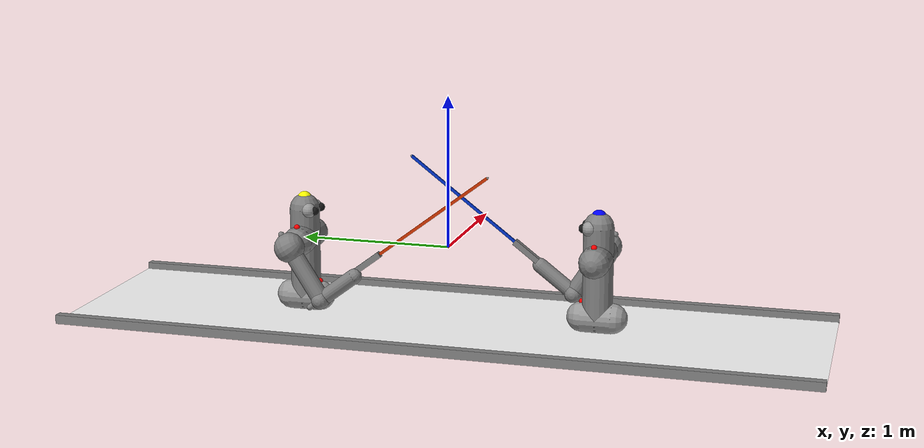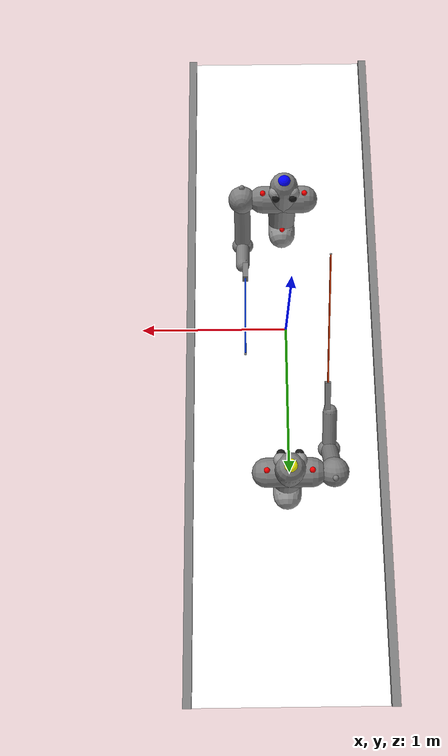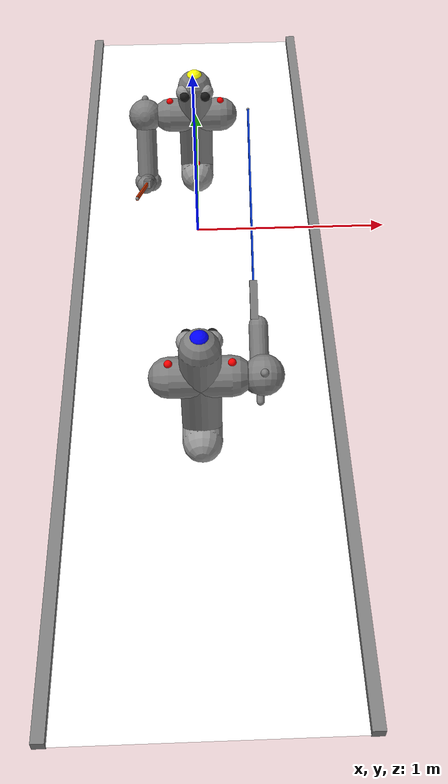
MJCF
<mujoco model="arm3d">
	<compiler angle="radian" coordinate="local" inertiafromgeom="true" />
	<option gravity="0 0 0" integrator="Euler" iterations="20" timestep="0.01" />
	<default>
		<joint armature="0.04" damping="1" limited="true" />
		<geom conaffinity="0" condim="1" contype="0" density="300" friction=".8 .1 .1" margin="0.002" />
	</default>
	<asset>
		<texture type="skybox" builtin="gradient" rgb1="0.059 0.620 0.961" rgb2="0.212 0.251 0.643" width="32" height="512" random="0.001" />
		<material name="glass" reflectance="1" rgba="1 1 1 0.3" shininess="0.7" />
		<material name="light-sword-yellow" rgba=".8 .2 0 1" emission="2" />
		<material name="light-sword-blue" rgba="0 .2 0.8 1" emission="2" />
	</asset>
	<worldbody>
		<light diffuse=".5 .5 .5" dir="0 0 -1" pos="0 0 3" castshadow="false" />
		<geom conaffinity="1" contype="1" name="table" pos="0 0 -0.5" size="0.7 2.5 0.1" type="plane" material="glass" />
		<geom conaffinity="1" contype="1" name="0_indicator" pos="-0.7 0 -0.49" size="0.03 2.5 0.03" type="box" />
		<geom conaffinity="1" contype="1" name="1_indicator" pos="0.7 0 -0.49" size="0.03 2.5 0.03" type="box" />
		<body name="0_x_slide_link" pos="0 -1 0">
			<geom fromto="-0.1 0 -0.4 0.1 0 -0.4" name="0_x_slide" rgba="0.6 0.6 0.6 0" size="0.1" type="capsule">
			</geom>
			<joint axis="1 0 0" name="0_x_slide_joint" pos="0 0 -0.4" range="-0.6 0.6" type="slide">
			</joint>
			<body name="0_y_slide_link" pos="0 0 0">
				<geom fromto="0 -0.1 -0.4 0 0.1 -0.4" name="0_y_slide" rgba="0.6 0.6 0.6 1" size="0.1" type="capsule" />
				<joint axis="0 1 0" name="0_y_slide_joint" pos="0 0 -0.4" range="-1.0 1.0" type="slide" />
				<body name="0_r_shoulder_pan_link" pos="0 0 0">
					<geom name="0_l_eye" pos="-0.06 0.05 0.2" rgba="0.6 0.6 0.6 1" size="0.05" type="sphere" />
					<geom name="0_r_eye" pos=" 0.06 0.05 0.2" rgba="0.6 0.6 0.6 1" size="0.05" type="sphere" />
					<geom name="0_l_eye_pin" pos="-0.06 0.09 0.2" rgba="0.1 0.1 0.1 1" size="0.03" type="sphere" />
					<geom name="0_r_eye_pin" pos=" 0.06 0.09 0.2" rgba="0.1 0.1 0.1 1" size="0.03" type="sphere" />
					<geom name="0_target0" pos="0 0.1 -0.3" rgba="1 0 0 1" size="0.02" type="sphere" />
					<geom name="0_target1" pos="0.15 0 0.1" rgba="1 0 0 1" size="0.02" type="sphere" />
					<geom name="0_target2" pos="-0.15 0 0.1" rgba="1 0 0 1" size="0.02" type="sphere" />
					<geom name="0_hat" pos="0 0 0.265" rgba="0 0 1 1" size="0.05" type="sphere" />
					<geom fromto="0 0 -0.4 0 0 0.2" name="0_shoulder_pan" size="0.1" type="capsule" />
					<joint axis="0 0 1" damping="1.0" name="0_r_shoulder_pan_joint" pos="0 0 0" range="-2.2854 1.714602" type="hinge" />
					<body axisangle="1 0 0 -1.0" name="0_r_shoulder_lift_link" pos="0 0 0">
						<geom fromto="-0.15 0 0 0.15 0 0" name="0_shoulder_lift" size="0.1" type="capsule" />
						<joint axis="1 0 0" damping="1.0" name="0_r_shoulder_lift_joint" pos="0.3 0 0" range="-0.2 2.2" type="hinge" />
						<body axisangle="0 0 1 1.57079" name="0_r_shoulder_turn_link" pos="0.3 0 0">
							<geom name="0_shoulder_turn" pos="0 0 0" size="0.1" type="sphere" />
							<joint axis="0 0 1" damping="1.0" name="0_r_shoulder_turn_joint" pos="0 0 0" range="-1.57079 0.4" type="hinge" />
							<body name="0_r_upper_arm_roll_link" pos="0 0 0">
								<geom fromto="-0.1 0 0 0.1 0 0" name="0_upper_arm_roll" size="0.02" type="capsule" />
								<joint axis="1 0 0" damping="0.1" name="0_r_upper_arm_roll_joint" pos="0 0 0" range="-1.5 1.7" type="hinge" />
								<body name="0_r_upper_arm_link" pos="0 0 0">
									<geom fromto="0 0 0 0.4 0 0" name="0_upper_arm" size="0.06" type="capsule" />
									<body axisangle="0 1 0 -1.65" name="0_r_elbow_flex_link" pos="0.4 0 0">
										<geom fromto="0 -0.02 0 0.0 0.02 0" name="0_elbow_flex" size="0.06" type="capsule" />
										<joint axis="0 1 0" damping="0.1" name="0_r_elbow_flex_joint" pos="0 0 0" range="-0.6713 1.65" type="hinge" />
										<body name="0_r_forearm_roll_link" pos="0 0 0">
											<geom fromto="-0.1 0 0 0.1 0 0" name="0_forearm_roll" size="0.02" type="capsule" />
											<joint axis="1 0 0" damping=".1" limited="true" name="0_r_forearm_roll_joint" pos="0 0 0" range="-1.5 1.5" type="hinge" />
											<body name="0_r_forearm_link" pos="0 0 0">
												<geom fromto="0 0 0 0.291 0 0" name="0_forearm" size="0.05" type="capsule" />
												<body name="0_r_wrist_flex_link" pos="0.321 0 0">
													<geom fromto="0 -0.02 0 0 0.02 0" name="0_wrist_flex" size="0.01" type="capsule" />
													<joint axis="0 1 0" damping=".1" name="0_r_wrist_flex_joint" pos="0 0 0" range="-1.094 0" type="hinge" />
													<body name="0_r_wrist_roll_link" pos="0 0 0">
														<joint axis="1 0 0" damping="0.1" limited="true" name="0_r_wrist_roll_joint" pos="0 0 0" range="-1.5 1.5" type="hinge" />
														<geom conaffinity="1" name="0_sword_blade" pos="0.6 0.02 0.02" size="0.5 0.005 0.01" type="box" material="light-sword-blue" />
														<geom name="0_sword_tip" type="sphere" rgba="0.6 0.6 0.6 1" pos=" 1.1 0.02 0.02" size="0.008" conaffinity="1" />
														<geom conaffinity="1" name="0_sword_handle" pos="0.1 0.02 0.02" size="0.1 0.02 0.02" type="box" />
													</body>
												</body>
											</body>
										</body>
									</body>
								</body>
							</body>
						</body>
					</body>
				</body>
			</body>
		</body>
		<body name="1_x_slide_link" pos="0 1 0" axisangle="0 0 1 -3.1415926">
			<geom fromto="-0.1 0 -0.4 0.1 0 -0.4" name="1_x_slide" rgba="0.6 0.6 0.6 0" size="0.1" type="capsule">
			</geom>
			<joint axis="1 0 0" name="1_x_slide_joint" pos="0 0 -0.4" range="-0.6 0.6" type="slide">
			</joint>
			<body name="1_y_slide_link" pos="0 0 0">
				<geom fromto="0 -0.1 -0.4 0 0.1 -0.4" name="1_y_slide" rgba="0.6 0.6 0.6 1" size="0.1" type="capsule" />
				<joint axis="0 1 0" name="1_y_slide_joint" pos="0 0 -0.4" range="-1.0 1.0" type="slide" />
				<body name="1_r_shoulder_pan_link" pos="0 0 0">
					<geom name="1_l_eye" pos="-0.06 0.05 0.2" rgba="0.6 0.6 0.6 1" size="0.05" type="sphere" />
					<geom name="1_r_eye" pos=" 0.06 0.05 0.2" rgba="0.6 0.6 0.6 1" size="0.05" type="sphere" />
					<geom name="1_l_eye_pin" pos="-0.06 0.09 0.2" rgba="0.1 0.1 0.1 1" size="0.03" type="sphere" />
					<geom name="1_r_eye_pin" pos=" 0.06 0.09 0.2" rgba="0.1 0.1 0.1 1" size="0.03" type="sphere" />
					<geom name="1_target0" pos="0 0.1 -0.3" rgba="1 0 0 1" size="0.02" type="sphere" />
					<geom name="1_target1" pos="0.15 0 0.1" rgba="1 0 0 1" size="0.02" type="sphere" />
					<geom name="1_target2" pos="-0.15 0 0.1" rgba="1 0 0 1" size="0.02" type="sphere" />
					<geom name="1_hat" pos="0 0 0.265" rgba="1 1 0 1" size="0.05" type="sphere" />
					<geom fromto="0 0 -0.4 0 0 0.2" name="1_shoulder_pan" size="0.1" type="capsule" />
					<joint axis="0 0 1" damping="1.0" name="1_r_shoulder_pan_joint" pos="0 0 0" range="-2.2854 1.714602" type="hinge" />
					<body axisangle="1 0 0 -1.0" name="1_r_shoulder_lift_link" pos="0 0 0">
						<geom fromto="-0.15 0 0 0.15 0 0" name="1_shoulder_lift" size="0.1" type="capsule" />
						<joint axis="1 0 0" damping="1.0" name="1_r_shoulder_lift_joint" pos="0.3 0 0" range="-0.2 2.2" type="hinge" />
						<body axisangle="0 0 1 1.57079" name="1_r_shoulder_turn_link" pos="0.3 0 0">
							<geom name="1_shoulder_turn" pos="0 0 0" size="0.1" type="sphere" />
							<joint axis="0 0 1" damping="1.0" name="1_r_shoulder_turn_joint" pos="0 0 0" range="-1.57079 0.4" type="hinge" />
							<body name="1_r_upper_arm_roll_link" pos="0 0 0">
								<geom fromto="-0.1 0 0 0.1 0 0" name="1_upper_arm_roll" size="0.02" type="capsule" />
								<joint axis="1 0 0" damping="0.1" name="1_r_upper_arm_roll_joint" pos="0 0 0" range="-1.5 1.7" type="hinge" />
								<body name="1_r_upper_arm_link" pos="0 0 0">
									<geom fromto="0 0 0 0.4 0 0" name="1_upper_arm" size="0.06" type="capsule" />
									<body axisangle="0 1 0 -1.65" name="1_r_elbow_flex_link" pos="0.4 0 0">
										<geom fromto="0 -0.02 0 0.0 0.02 0" name="1_elbow_flex" size="0.06" type="capsule" />
										<joint axis="0 1 0" damping="0.1" name="1_r_elbow_flex_joint" pos="0 0 0" range="-0.6713 1.65" type="hinge" />
										<body name="1_r_forearm_roll_link" pos="0 0 0">
											<geom fromto="-0.1 0 0 0.1 0 0" name="1_forearm_roll" size="0.02" type="capsule" />
											<joint axis="1 0 0" damping=".1" limited="true" name="1_r_forearm_roll_joint" pos="0 0 0" range="-1.5 1.5" type="hinge" />
											<body name="1_r_forearm_link" pos="0 0 0">
												<geom fromto="0 0 0 0.291 0 0" name="1_forearm" size="0.05" type="capsule" />
												<body name="1_r_wrist_flex_link" pos="0.321 0 0">
													<geom fromto="0 -0.02 0 0 0.02 0" name="1_wrist_flex" size="0.01" type="capsule" />
													<joint axis="0 1 0" damping=".1" name="1_r_wrist_flex_joint" pos="0 0 0" range="-1.094 0" type="hinge" />
													<body name="1_r_wrist_roll_link" pos="0 0 0">
														<joint axis="1 0 0" damping="0.1" limited="true" name="1_r_wrist_roll_joint" pos="0 0 0" range="-1.5 1.5" type="hinge" />
														<geom conaffinity="1" name="1_sword_blade" pos="0.6 0.02 0.02" size="0.5 0.005 0.01" type="box" material="light-sword-yellow" />
														<geom name="1_sword_tip" type="sphere" rgba="0.6 0.6 0.6 1" pos=" 1.1 0.02 0.02" size="0.008" conaffinity="1" />
														<geom conaffinity="1" name="1_sword_handle" pos="0.1 0.02 0.02" size="0.1 0.02 0.02" type="box" />
													</body>
												</body>
											</body>
										</body>
									</body>
								</body>
							</body>
						</body>
					</body>
				</body>
			</body>
		</body>
	</worldbody>
	<actuator>
		<motor ctrllimited="true" ctrlrange="-2.0 2.0" joint="0_x_slide_joint">
		</motor>
		<motor ctrllimited="true" ctrlrange="-2.0 2.0" joint="0_y_slide_joint" />
		<motor ctrllimited="true" ctrlrange="-2.0 2.0" joint="0_r_shoulder_pan_joint" />
		<motor ctrllimited="true" ctrlrange="-2.0 2.0" joint="0_r_shoulder_lift_joint" />
		<motor ctrllimited="true" ctrlrange="-2.0 2.0" joint="0_r_shoulder_turn_joint" />
		<motor ctrllimited="true" ctrlrange="-2.0 2.0" joint="0_r_upper_arm_roll_joint" />
		<motor ctrllimited="true" ctrlrange="-2.0 2.0" joint="0_r_elbow_flex_joint" />
		<motor ctrllimited="true" ctrlrange="-2.0 2.0" joint="0_r_forearm_roll_joint" />
		<motor ctrllimited="true" ctrlrange="-2.0 2.0" joint="0_r_wrist_flex_joint" />
		<motor ctrllimited="true" ctrlrange="-2.0 2.0" joint="0_r_wrist_roll_joint" />
		<motor ctrllimited="true" ctrlrange="-2.0 2.0" joint="1_x_slide_joint">
		</motor>
		<motor ctrllimited="true" ctrlrange="-2.0 2.0" joint="1_y_slide_joint" />
		<motor ctrllimited="true" ctrlrange="-2.0 2.0" joint="1_r_shoulder_pan_joint" />
		<motor ctrllimited="true" ctrlrange="-2.0 2.0" joint="1_r_shoulder_lift_joint" />
		<motor ctrllimited="true" ctrlrange="-2.0 2.0" joint="1_r_shoulder_turn_joint" />
		<motor ctrllimited="true" ctrlrange="-2.0 2.0" joint="1_r_upper_arm_roll_joint" />
		<motor ctrllimited="true" ctrlrange="-2.0 2.0" joint="1_r_elbow_flex_joint" />
		<motor ctrllimited="true" ctrlrange="-2.0 2.0" joint="1_r_forearm_roll_joint" />
		<motor ctrllimited="true" ctrlrange="-2.0 2.0" joint="1_r_wrist_flex_joint" />
		<motor ctrllimited="true" ctrlrange="-2.0 2.0" joint="1_r_wrist_roll_joint" />
	</actuator>
	<contact>
		<pair geom1="0_sword_tip" geom2="1_shoulder_pan" name="tip0_sp_attact" />
		<pair geom1="0_sword_tip" geom2="1_shoulder_lift" name="tip0_sl_attact" />
		<pair geom1="1_sword_tip" geom2="0_shoulder_pan" name="tip1_sp_attact" />
		<pair geom1="1_sword_tip" geom2="0_shoulder_lift" name="tip1_sl_attact" />
		<pair geom1="0_sword_blade" geom2="1_sword_blade" name="blade0_contact" />
		<pair geom1="0_sword_blade" geom2="1_y_slide" name="blade0_slide_contact" />
		<pair geom1="0_sword_blade" geom2="1_shoulder_pan" name="blade0_sp_contact" />
		<pair geom1="0_sword_blade" geom2="1_shoulder_lift" name="blade0_sl_contact" />
		<pair geom1="0_sword_blade" geom2="1_upper_arm_roll" name="blade0_uar_contact" />
		<pair geom1="0_sword_blade" geom2="1_upper_arm" name="blade0_ua_contact" />
		<pair geom1="0_sword_blade" geom2="1_elbow_flex" name="blade0_ef_contact" />
		<pair geom1="0_sword_blade" geom2="1_forearm_roll" name="blade0_fr_contact" />
		<pair geom1="0_sword_blade" geom2="1_forearm" name="blade0_forearm_contact" />
		<pair geom1="0_sword_blade" geom2="1_wrist_flex" name="blade0_wf_contact" />
		<pair geom1="0_sword_blade" geom2="1_sword_handle" name="blade0_handle_contact" />
		<pair geom1="1_sword_blade" geom2="0_sword_blade" name="blade1_contact" />
		<pair geom1="1_sword_blade" geom2="0_y_slide" name="blade1_slide_contact" />
		<pair geom1="1_sword_blade" geom2="0_shoulder_pan" name="blade1_sp_contact" />
		<pair geom1="1_sword_blade" geom2="0_shoulder_lift" name="blade1_sl_contact" />
		<pair geom1="1_sword_blade" geom2="0_upper_arm_roll" name="blade1_uar_contact" />
		<pair geom1="1_sword_blade" geom2="0_upper_arm" name="blade1_ua_contact" />
		<pair geom1="1_sword_blade" geom2="0_elbow_flex" name="blade1_ef_contact" />
		<pair geom1="1_sword_blade" geom2="0_forearm_roll" name="blade1_fr_contact" />
		<pair geom1="1_sword_blade" geom2="0_forearm" name="blade1_forearm_contact" />
		<pair geom1="1_sword_blade" geom2="0_wrist_flex" name="blade1_wf_contact" />
		<pair geom1="1_sword_blade" geom2="0_sword_handle" name="blade1_handle_contact" />
		<pair geom1="0_forearm" geom2="1_y_slide" name="arm0_slide_contact" />
		<pair geom1="0_forearm" geom2="1_shoulder_pan" name="arm0_sp_contact" />
		<pair geom1="0_forearm" geom2="1_shoulder_lift" name="arm0_sl_contact" />
		<pair geom1="0_forearm" geom2="1_upper_arm_roll" name="arm0_uar_contact" />
		<pair geom1="0_forearm" geom2="1_upper_arm" name="arm0_ua_contact" />
		<pair geom1="0_forearm" geom2="1_elbow_flex" name="arm0_ef_contact" />
		<pair geom1="0_forearm" geom2="1_forearm_roll" name="arm0_fr_contact" />
		<pair geom1="0_forearm" geom2="1_forearm" name="arm0_forearm_contact" />
		<pair geom1="0_forearm" geom2="1_wrist_flex" name="arm0_wf_contact" />
		<pair geom1="0_forearm" geom2="1_sword_handle" name="arm0_handle_contact" />
		<pair geom1="1_forearm" geom2="0_y_slide" name="arm1_slide_contact" />
		<pair geom1="1_forearm" geom2="0_shoulder_pan" name="arm1_sp_contact" />
		<pair geom1="1_forearm" geom2="0_shoulder_lift" name="arm1_sl_contact" />
		<pair geom1="1_forearm" geom2="0_upper_arm_roll" name="arm1_uar_contact" />
		<pair geom1="1_forearm" geom2="0_upper_arm" name="arm1_ua_contact" />
		<pair geom1="1_forearm" geom2="0_elbow_flex" name="arm1_ef_contact" />
		<pair geom1="1_forearm" geom2="0_forearm_roll" name="arm1_fr_contact" />
		<pair geom1="1_forearm" geom2="0_forearm" name="arm1_forearm_contact" />
		<pair geom1="1_forearm" geom2="0_wrist_flex" name="arm1_wf_contact" />
		<pair geom1="0_shoulder_lift" geom2="1_y_slide" name="shoulder0_slide_contact" />
		<pair geom1="0_shoulder_lift" geom2="1_shoulder_pan" name="shoulder0_sp_contact" />
		<pair geom1="0_shoulder_lift" geom2="1_shoulder_lift" name="shoulder0_sl_contact" />
		<pair geom1="0_shoulder_lift" geom2="1_upper_arm_roll" name="shoulder0_uar_contact" />
		<pair geom1="0_shoulder_lift" geom2="1_upper_arm" name="shoulder0_ua_contact" />
		<pair geom1="0_shoulder_lift" geom2="1_elbow_flex" name="shoulder0_ef_contact" />
		<pair geom1="0_shoulder_lift" geom2="1_forearm_roll" name="shoulder0_fr_contact" />
		<pair geom1="0_shoulder_lift" geom2="1_wrist_flex" name="shoulder0_wf_contact" />
		<pair geom1="0_shoulder_lift" geom2="1_sword_handle" name="shoulder0_handle_contact" />
		<pair geom1="1_shoulder_lift" geom2="0_y_slide" name="shoulder1_slide_contact" />
		<pair geom1="1_shoulder_lift" geom2="0_shoulder_pan" name="shoulder1_sp_contact" />
		<pair geom1="1_shoulder_lift" geom2="0_upper_arm_roll" name="shoulder1_uar_contact" />
		<pair geom1="1_shoulder_lift" geom2="0_upper_arm" name="shoulder1_ua_contact" />
		<pair geom1="1_shoulder_lift" geom2="0_elbow_flex" name="shoulder1_ef_contact" />
		<pair geom1="1_shoulder_lift" geom2="0_forearm_roll" name="shoulder1_fr_contact" />
		<pair geom1="1_shoulder_lift" geom2="0_wrist_flex" name="shoulder1_wf_contact" />
		<pair geom1="1_shoulder_lift" geom2="0_sword_handle" name="shoulder1_handle_contact" />
	</contact>
</mujoco>
